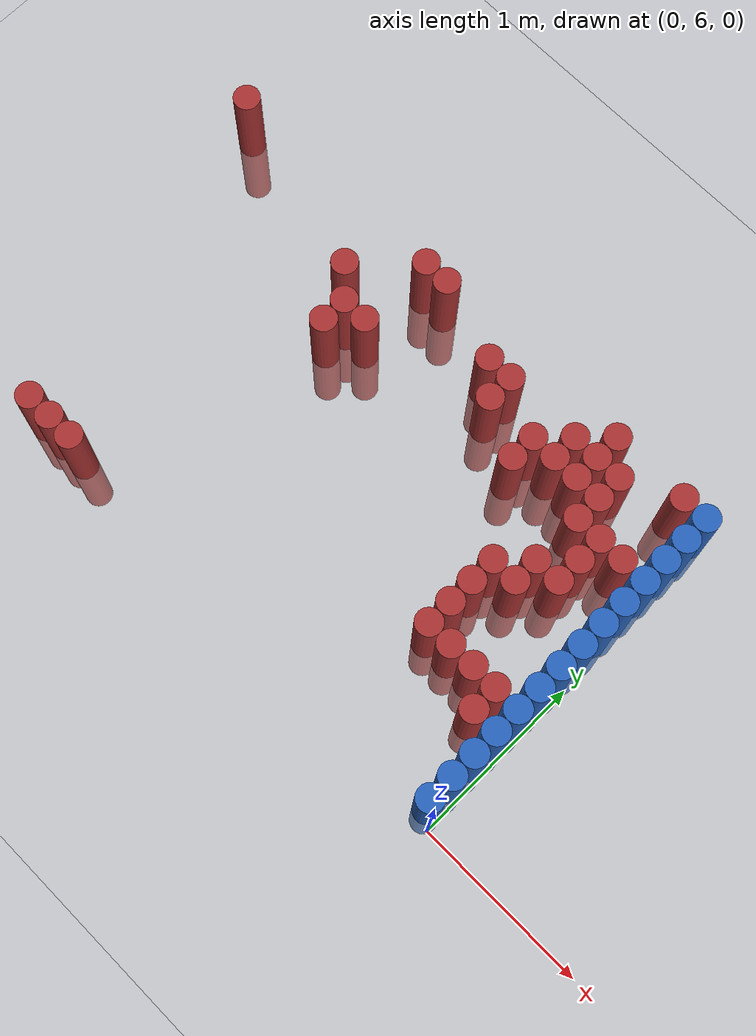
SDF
<sdf version="1.6">
 <world name="default">
  <model name="ground_plane">
   <static>1</static>
   <link name="link">
    <collision name="collision">
     <geometry><plane><normal>0 0 1</normal><size>100 100</size></plane></geometry>
     <surface><friction><ode><mu>100</mu><mu2>50</mu2></ode></friction></surface>
    </collision>
    <visual name="visual">
     <cast_shadows>0</cast_shadows>
     <geometry><plane><normal>0 0 1</normal><size>100 100</size></plane></geometry>
     <material>
      <script><uri>file://media/materials/scripts/gazebo.material</uri><name>Gazebo/Grey</name></script>
     </material>
    </visual>
   </link>
  </model>
  <model name="unit_cylinder_176">
   <static>1</static>
   <pose>-3.375000 8.025000 0.000000 0.000000 0.000000 0.000000</pose>
   <link name="link">
    <inertial>
     <mass>1</mass>
     <inertia><ixx>0.145833</ixx><ixy>0</ixy><ixz>0</ixz><iyy>0.145833</iyy><iyz>0</iyz><izz>0.125</izz></inertia>
    </inertial>
    <collision name="collision">
     <geometry><cylinder><radius>0.075000</radius><length>1</length></cylinder></geometry>
    </collision>
    <visual name="visual">
     <geometry><cylinder><radius>0.075000</radius><length>1</length></cylinder></geometry>
     <material>
      <ambient>0.648000 0.192000 0.192000 1</ambient>
      <diffuse>0.648000 0.192000 0.192000 1</diffuse>
     </material>
     <material>
      <script><name>Gazebo/Grey</name><uri>file://media/materials/scripts/gazebo.material</uri></script>
     </material>
    </visual>
   </link>
  </model>
  <model name="unit_cylinder_196">
   <static>1</static>
   <pose>-2.925000 6.075000 0.000000 0.000000 0.000000 0.000000</pose>
   <link name="link">
    <inertial>
     <mass>1</mass>
     <inertia><ixx>0.145833</ixx><ixy>0</ixy><ixz>0</ixz><iyy>0.145833</iyy><iyz>0</iyz><izz>0.125</izz></inertia>
    </inertial>
    <collision name="collision">
     <geometry><cylinder><radius>0.075000</radius><length>1</length></cylinder></geometry>
    </collision>
    <visual name="visual">
     <geometry><cylinder><radius>0.075000</radius><length>1</length></cylinder></geometry>
     <material>
      <ambient>0.648000 0.192000 0.192000 1</ambient>
      <diffuse>0.648000 0.192000 0.192000 1</diffuse>
     </material>
     <material>
      <script><name>Gazebo/Grey</name><uri>file://media/materials/scripts/gazebo.material</uri></script>
     </material>
    </visual>
   </link>
  </model>
  <model name="unit_cylinder_199">
   <static>1</static>
   <pose>-2.775000 6.075000 0.000000 0.000000 0.000000 0.000000</pose>
   <link name="link">
    <inertial>
     <mass>1</mass>
     <inertia><ixx>0.145833</ixx><ixy>0</ixy><ixz>0</ixz><iyy>0.145833</iyy><iyz>0</iyz><izz>0.125</izz></inertia>
    </inertial>
    <collision name="collision">
     <geometry><cylinder><radius>0.075000</radius><length>1</length></cylinder></geometry>
    </collision>
    <visual name="visual">
     <geometry><cylinder><radius>0.075000</radius><length>1</length></cylinder></geometry>
     <material>
      <ambient>0.648000 0.192000 0.192000 1</ambient>
      <diffuse>0.648000 0.192000 0.192000 1</diffuse>
     </material>
     <material>
      <script><name>Gazebo/Grey</name><uri>file://media/materials/scripts/gazebo.material</uri></script>
     </material>
    </visual>
   </link>
  </model>
  <model name="unit_cylinder_206">
   <static>1</static>
   <pose>-2.625000 6.075000 0.000000 0.000000 0.000000 0.000000</pose>
   <link name="link">
    <inertial>
     <mass>1</mass>
     <inertia><ixx>0.145833</ixx><ixy>0</ixy><ixz>0</ixz><iyy>0.145833</iyy><iyz>0</iyz><izz>0.125</izz></inertia>
    </inertial>
    <collision name="collision">
     <geometry><cylinder><radius>0.075000</radius><length>1</length></cylinder></geometry>
    </collision>
    <visual name="visual">
     <geometry><cylinder><radius>0.075000</radius><length>1</length></cylinder></geometry>
     <material>
      <ambient>0.648000 0.192000 0.192000 1</ambient>
      <diffuse>0.648000 0.192000 0.192000 1</diffuse>
     </material>
     <material>
      <script><name>Gazebo/Grey</name><uri>file://media/materials/scripts/gazebo.material</uri></script>
     </material>
    </visual>
   </link>
  </model>
  <model name="unit_cylinder_210">
   <static>1</static>
   <pose>-2.325000 7.725000 0.000000 0.000000 0.000000 0.000000</pose>
   <link name="link">
    <inertial>
     <mass>1</mass>
     <inertia><ixx>0.145833</ixx><ixy>0</ixy><ixz>0</ixz><iyy>0.145833</iyy><iyz>0</iyz><izz>0.125</izz></inertia>
    </inertial>
    <collision name="collision">
     <geometry><cylinder><radius>0.075000</radius><length>1</length></cylinder></geometry>
    </collision>
    <visual name="visual">
     <geometry><cylinder><radius>0.075000</radius><length>1</length></cylinder></geometry>
     <material>
      <ambient>0.648000 0.192000 0.192000 1</ambient>
      <diffuse>0.648000 0.192000 0.192000 1</diffuse>
     </material>
     <material>
      <script><name>Gazebo/Grey</name><uri>file://media/materials/scripts/gazebo.material</uri></script>
     </material>
    </visual>
   </link>
  </model>
  <model name="unit_cylinder_213">
   <static>1</static>
   <pose>-2.175000 7.425000 0.000000 0.000000 0.000000 0.000000</pose>
   <link name="link">
    <inertial>
     <mass>1</mass>
     <inertia><ixx>0.145833</ixx><ixy>0</ixy><ixz>0</ixz><iyy>0.145833</iyy><iyz>0</iyz><izz>0.125</izz></inertia>
    </inertial>
    <collision name="collision">
     <geometry><cylinder><radius>0.075000</radius><length>1</length></cylinder></geometry>
    </collision>
    <visual name="visual">
     <geometry><cylinder><radius>0.075000</radius><length>1</length></cylinder></geometry>
     <material>
      <ambient>0.648000 0.192000 0.192000 1</ambient>
      <diffuse>0.648000 0.192000 0.192000 1</diffuse>
     </material>
     <material>
      <script><name>Gazebo/Grey</name><uri>file://media/materials/scripts/gazebo.material</uri></script>
     </material>
    </visual>
   </link>
  </model>
  <model name="unit_cylinder_214">
   <static>1</static>
   <pose>-2.175000 7.575000 0.000000 0.000000 0.000000 0.000000</pose>
   <link name="link">
    <inertial>
     <mass>1</mass>
     <inertia><ixx>0.145833</ixx><ixy>0</ixy><ixz>0</ixz><iyy>0.145833</iyy><iyz>0</iyz><izz>0.125</izz></inertia>
    </inertial>
    <collision name="collision">
     <geometry><cylinder><radius>0.075000</radius><length>1</length></cylinder></geometry>
    </collision>
    <visual name="visual">
     <geometry><cylinder><radius>0.075000</radius><length>1</length></cylinder></geometry>
     <material>
      <ambient>0.648000 0.192000 0.192000 1</ambient>
      <diffuse>0.648000 0.192000 0.192000 1</diffuse>
     </material>
     <material>
      <script><name>Gazebo/Grey</name><uri>file://media/materials/scripts/gazebo.material</uri></script>
     </material>
    </visual>
   </link>
  </model>
  <model name="unit_cylinder_218">
   <static>1</static>
   <pose>-2.025000 7.575000 0.000000 0.000000 0.000000 0.000000</pose>
   <link name="link">
    <inertial>
     <mass>1</mass>
     <inertia><ixx>0.145833</ixx><ixy>0</ixy><ixz>0</ixz><iyy>0.145833</iyy><iyz>0</iyz><izz>0.125</izz></inertia>
    </inertial>
    <collision name="collision">
     <geometry><cylinder><radius>0.075000</radius><length>1</length></cylinder></geometry>
    </collision>
    <visual name="visual">
     <geometry><cylinder><radius>0.075000</radius><length>1</length></cylinder></geometry>
     <material>
      <ambient>0.648000 0.192000 0.192000 1</ambient>
      <diffuse>0.648000 0.192000 0.192000 1</diffuse>
     </material>
     <material>
      <script><name>Gazebo/Grey</name><uri>file://media/materials/scripts/gazebo.material</uri></script>
     </material>
    </visual>
   </link>
  </model>
  <model name="unit_cylinder_219">
   <static>1</static>
   <pose>-2.025000 8.025000 0.000000 0.000000 0.000000 0.000000</pose>
   <link name="link">
    <inertial>
     <mass>1</mass>
     <inertia><ixx>0.145833</ixx><ixy>0</ixy><ixz>0</ixz><iyy>0.145833</iyy><iyz>0</iyz><izz>0.125</izz></inertia>
    </inertial>
    <collision name="collision">
     <geometry><cylinder><radius>0.075000</radius><length>1</length></cylinder></geometry>
    </collision>
    <visual name="visual">
     <geometry><cylinder><radius>0.075000</radius><length>1</length></cylinder></geometry>
     <material>
      <ambient>0.648000 0.192000 0.192000 1</ambient>
      <diffuse>0.648000 0.192000 0.192000 1</diffuse>
     </material>
     <material>
      <script><name>Gazebo/Grey</name><uri>file://media/materials/scripts/gazebo.material</uri></script>
     </material>
    </visual>
   </link>
  </model>
  <model name="unit_cylinder_222">
   <static>1</static>
   <pose>-1.875000 8.025000 0.000000 0.000000 0.000000 0.000000</pose>
   <link name="link">
    <inertial>
     <mass>1</mass>
     <inertia><ixx>0.145833</ixx><ixy>0</ixy><ixz>0</ixz><iyy>0.145833</iyy><iyz>0</iyz><izz>0.125</izz></inertia>
    </inertial>
    <collision name="collision">
     <geometry><cylinder><radius>0.075000</radius><length>1</length></cylinder></geometry>
    </collision>
    <visual name="visual">
     <geometry><cylinder><radius>0.075000</radius><length>1</length></cylinder></geometry>
     <material>
      <ambient>0.648000 0.192000 0.192000 1</ambient>
      <diffuse>0.648000 0.192000 0.192000 1</diffuse>
     </material>
     <material>
      <script><name>Gazebo/Grey</name><uri>file://media/materials/scripts/gazebo.material</uri></script>
     </material>
    </visual>
   </link>
  </model>
  <model name="unit_cylinder_232">
   <static>1</static>
   <pose>-1.425000 7.875000 0.000000 0.000000 0.000000 0.000000</pose>
   <link name="link">
    <inertial>
     <mass>1</mass>
     <inertia><ixx>0.145833</ixx><ixy>0</ixy><ixz>0</ixz><iyy>0.145833</iyy><iyz>0</iyz><izz>0.125</izz></inertia>
    </inertial>
    <collision name="collision">
     <geometry><cylinder><radius>0.075000</radius><length>1</length></cylinder></geometry>
    </collision>
    <visual name="visual">
     <geometry><cylinder><radius>0.075000</radius><length>1</length></cylinder></geometry>
     <material>
      <ambient>0.648000 0.192000 0.192000 1</ambient>
      <diffuse>0.648000 0.192000 0.192000 1</diffuse>
     </material>
     <material>
      <script><name>Gazebo/Grey</name><uri>file://media/materials/scripts/gazebo.material</uri></script>
     </material>
    </visual>
   </link>
  </model>
  <model name="unit_cylinder_235">
   <static>1</static>
   <pose>-1.275000 7.725000 0.000000 0.000000 0.000000 0.000000</pose>
   <link name="link">
    <inertial>
     <mass>1</mass>
     <inertia><ixx>0.145833</ixx><ixy>0</ixy><ixz>0</ixz><iyy>0.145833</iyy><iyz>0</iyz><izz>0.125</izz></inertia>
    </inertial>
    <collision name="collision">
     <geometry><cylinder><radius>0.075000</radius><length>1</length></cylinder></geometry>
    </collision>
    <visual name="visual">
     <geometry><cylinder><radius>0.075000</radius><length>1</length></cylinder></geometry>
     <material>
      <ambient>0.648000 0.192000 0.192000 1</ambient>
      <diffuse>0.648000 0.192000 0.192000 1</diffuse>
     </material>
     <material>
      <script><name>Gazebo/Grey</name><uri>file://media/materials/scripts/gazebo.material</uri></script>
     </material>
    </visual>
   </link>
  </model>
  <model name="unit_cylinder_236">
   <static>1</static>
   <pose>-1.275000 7.875000 0.000000 0.000000 0.000000 0.000000</pose>
   <link name="link">
    <inertial>
     <mass>1</mass>
     <inertia><ixx>0.145833</ixx><ixy>0</ixy><ixz>0</ixz><iyy>0.145833</iyy><iyz>0</iyz><izz>0.125</izz></inertia>
    </inertial>
    <collision name="collision">
     <geometry><cylinder><radius>0.075000</radius><length>1</length></cylinder></geometry>
    </collision>
    <visual name="visual">
     <geometry><cylinder><radius>0.075000</radius><length>1</length></cylinder></geometry>
     <material>
      <ambient>0.648000 0.192000 0.192000 1</ambient>
      <diffuse>0.648000 0.192000 0.192000 1</diffuse>
     </material>
     <material>
      <script><name>Gazebo/Grey</name><uri>file://media/materials/scripts/gazebo.material</uri></script>
     </material>
    </visual>
   </link>
  </model>
  <model name="unit_cylinder_239">
   <static>1</static>
   <pose>-0.975000 7.575000 0.000000 0.000000 0.000000 0.000000</pose>
   <link name="link">
    <inertial>
     <mass>1</mass>
     <inertia><ixx>0.145833</ixx><ixy>0</ixy><ixz>0</ixz><iyy>0.145833</iyy><iyz>0</iyz><izz>0.125</izz></inertia>
    </inertial>
    <collision name="collision">
     <geometry><cylinder><radius>0.075000</radius><length>1</length></cylinder></geometry>
    </collision>
    <visual name="visual">
     <geometry><cylinder><radius>0.075000</radius><length>1</length></cylinder></geometry>
     <material>
      <ambient>0.648000 0.192000 0.192000 1</ambient>
      <diffuse>0.648000 0.192000 0.192000 1</diffuse>
     </material>
     <material>
      <script><name>Gazebo/Grey</name><uri>file://media/materials/scripts/gazebo.material</uri></script>
     </material>
    </visual>
   </link>
  </model>
  <model name="unit_cylinder_240">
   <static>1</static>
   <pose>-0.975000 7.725000 0.000000 0.000000 0.000000 0.000000</pose>
   <link name="link">
    <inertial>
     <mass>1</mass>
     <inertia><ixx>0.145833</ixx><ixy>0</ixy><ixz>0</ixz><iyy>0.145833</iyy><iyz>0</iyz><izz>0.125</izz></inertia>
    </inertial>
    <collision name="collision">
     <geometry><cylinder><radius>0.075000</radius><length>1</length></cylinder></geometry>
    </collision>
    <visual name="visual">
     <geometry><cylinder><radius>0.075000</radius><length>1</length></cylinder></geometry>
     <material>
      <ambient>0.648000 0.192000 0.192000 1</ambient>
      <diffuse>0.648000 0.192000 0.192000 1</diffuse>
     </material>
     <material>
      <script><name>Gazebo/Grey</name><uri>file://media/materials/scripts/gazebo.material</uri></script>
     </material>
    </visual>
   </link>
  </model>
  <model name="unit_cylinder_245">
   <static>1</static>
   <pose>-0.825000 7.725000 0.000000 0.000000 0.000000 0.000000</pose>
   <link name="link">
    <inertial>
     <mass>1</mass>
     <inertia><ixx>0.145833</ixx><ixy>0</ixy><ixz>0</ixz><iyy>0.145833</iyy><iyz>0</iyz><izz>0.125</izz></inertia>
    </inertial>
    <collision name="collision">
     <geometry><cylinder><radius>0.075000</radius><length>1</length></cylinder></geometry>
    </collision>
    <visual name="visual">
     <geometry><cylinder><radius>0.075000</radius><length>1</length></cylinder></geometry>
     <material>
      <ambient>0.648000 0.192000 0.192000 1</ambient>
      <diffuse>0.648000 0.192000 0.192000 1</diffuse>
     </material>
     <material>
      <script><name>Gazebo/Grey</name><uri>file://media/materials/scripts/gazebo.material</uri></script>
     </material>
    </visual>
   </link>
  </model>
  <model name="unit_cylinder_246">
   <static>1</static>
   <pose>-0.825000 7.875000 0.000000 0.000000 0.000000 0.000000</pose>
   <link name="link">
    <inertial>
     <mass>1</mass>
     <inertia><ixx>0.145833</ixx><ixy>0</ixy><ixz>0</ixz><iyy>0.145833</iyy><iyz>0</iyz><izz>0.125</izz></inertia>
    </inertial>
    <collision name="collision">
     <geometry><cylinder><radius>0.075000</radius><length>1</length></cylinder></geometry>
    </collision>
    <visual name="visual">
     <geometry><cylinder><radius>0.075000</radius><length>1</length></cylinder></geometry>
     <material>
      <ambient>0.648000 0.192000 0.192000 1</ambient>
      <diffuse>0.648000 0.192000 0.192000 1</diffuse>
     </material>
     <material>
      <script><name>Gazebo/Grey</name><uri>file://media/materials/scripts/gazebo.material</uri></script>
     </material>
    </visual>
   </link>
  </model>
  <model name="unit_cylinder_250">
   <static>1</static>
   <pose>-0.675000 6.675000 0.000000 0.000000 0.000000 0.000000</pose>
   <link name="link">
    <inertial>
     <mass>1</mass>
     <inertia><ixx>0.145833</ixx><ixy>0</ixy><ixz>0</ixz><iyy>0.145833</iyy><iyz>0</iyz><izz>0.125</izz></inertia>
    </inertial>
    <collision name="collision">
     <geometry><cylinder><radius>0.075000</radius><length>1</length></cylinder></geometry>
    </collision>
    <visual name="visual">
     <geometry><cylinder><radius>0.075000</radius><length>1</length></cylinder></geometry>
     <material>
      <ambient>0.648000 0.192000 0.192000 1</ambient>
      <diffuse>0.648000 0.192000 0.192000 1</diffuse>
     </material>
     <material>
      <script><name>Gazebo/Grey</name><uri>file://media/materials/scripts/gazebo.material</uri></script>
     </material>
    </visual>
   </link>
  </model>
  <model name="unit_cylinder_251">
   <static>1</static>
   <pose>-0.675000 6.825000 0.000000 0.000000 0.000000 0.000000</pose>
   <link name="link">
    <inertial>
     <mass>1</mass>
     <inertia><ixx>0.145833</ixx><ixy>0</ixy><ixz>0</ixz><iyy>0.145833</iyy><iyz>0</iyz><izz>0.125</izz></inertia>
    </inertial>
    <collision name="collision">
     <geometry><cylinder><radius>0.075000</radius><length>1</length></cylinder></geometry>
    </collision>
    <visual name="visual">
     <geometry><cylinder><radius>0.075000</radius><length>1</length></cylinder></geometry>
     <material>
      <ambient>0.648000 0.192000 0.192000 1</ambient>
      <diffuse>0.648000 0.192000 0.192000 1</diffuse>
     </material>
     <material>
      <script><name>Gazebo/Grey</name><uri>file://media/materials/scripts/gazebo.material</uri></script>
     </material>
    </visual>
   </link>
  </model>
  <model name="unit_cylinder_252">
   <static>1</static>
   <pose>-0.675000 6.975000 0.000000 0.000000 0.000000 0.000000</pose>
   <link name="link">
    <inertial>
     <mass>1</mass>
     <inertia><ixx>0.145833</ixx><ixy>0</ixy><ixz>0</ixz><iyy>0.145833</iyy><iyz>0</iyz><izz>0.125</izz></inertia>
    </inertial>
    <collision name="collision">
     <geometry><cylinder><radius>0.075000</radius><length>1</length></cylinder></geometry>
    </collision>
    <visual name="visual">
     <geometry><cylinder><radius>0.075000</radius><length>1</length></cylinder></geometry>
     <material>
      <ambient>0.648000 0.192000 0.192000 1</ambient>
      <diffuse>0.648000 0.192000 0.192000 1</diffuse>
     </material>
     <material>
      <script><name>Gazebo/Grey</name><uri>file://media/materials/scripts/gazebo.material</uri></script>
     </material>
    </visual>
   </link>
  </model>
  <model name="unit_cylinder_253">
   <static>1</static>
   <pose>-0.675000 7.125000 0.000000 0.000000 0.000000 0.000000</pose>
   <link name="link">
    <inertial>
     <mass>1</mass>
     <inertia><ixx>0.145833</ixx><ixy>0</ixy><ixz>0</ixz><iyy>0.145833</iyy><iyz>0</iyz><izz>0.125</izz></inertia>
    </inertial>
    <collision name="collision">
     <geometry><cylinder><radius>0.075000</radius><length>1</length></cylinder></geometry>
    </collision>
    <visual name="visual">
     <geometry><cylinder><radius>0.075000</radius><length>1</length></cylinder></geometry>
     <material>
      <ambient>0.648000 0.192000 0.192000 1</ambient>
      <diffuse>0.648000 0.192000 0.192000 1</diffuse>
     </material>
     <material>
      <script><name>Gazebo/Grey</name><uri>file://media/materials/scripts/gazebo.material</uri></script>
     </material>
    </visual>
   </link>
  </model>
  <model name="unit_cylinder_254">
   <static>1</static>
   <pose>-0.675000 7.725000 0.000000 0.000000 0.000000 0.000000</pose>
   <link name="link">
    <inertial>
     <mass>1</mass>
     <inertia><ixx>0.145833</ixx><ixy>0</ixy><ixz>0</ixz><iyy>0.145833</iyy><iyz>0</iyz><izz>0.125</izz></inertia>
    </inertial>
    <collision name="collision">
     <geometry><cylinder><radius>0.075000</radius><length>1</length></cylinder></geometry>
    </collision>
    <visual name="visual">
     <geometry><cylinder><radius>0.075000</radius><length>1</length></cylinder></geometry>
     <material>
      <ambient>0.648000 0.192000 0.192000 1</ambient>
      <diffuse>0.648000 0.192000 0.192000 1</diffuse>
     </material>
     <material>
      <script><name>Gazebo/Grey</name><uri>file://media/materials/scripts/gazebo.material</uri></script>
     </material>
    </visual>
   </link>
  </model>
  <model name="unit_cylinder_255">
   <static>1</static>
   <pose>-0.675000 7.875000 0.000000 0.000000 0.000000 0.000000</pose>
   <link name="link">
    <inertial>
     <mass>1</mass>
     <inertia><ixx>0.145833</ixx><ixy>0</ixy><ixz>0</ixz><iyy>0.145833</iyy><iyz>0</iyz><izz>0.125</izz></inertia>
    </inertial>
    <collision name="collision">
     <geometry><cylinder><radius>0.075000</radius><length>1</length></cylinder></geometry>
    </collision>
    <visual name="visual">
     <geometry><cylinder><radius>0.075000</radius><length>1</length></cylinder></geometry>
     <material>
      <ambient>0.648000 0.192000 0.192000 1</ambient>
      <diffuse>0.648000 0.192000 0.192000 1</diffuse>
     </material>
     <material>
      <script><name>Gazebo/Grey</name><uri>file://media/materials/scripts/gazebo.material</uri></script>
     </material>
    </visual>
   </link>
  </model>
  <model name="unit_cylinder_256">
   <static>1</static>
   <pose>-0.675000 8.025000 0.000000 0.000000 0.000000 0.000000</pose>
   <link name="link">
    <inertial>
     <mass>1</mass>
     <inertia><ixx>0.145833</ixx><ixy>0</ixy><ixz>0</ixz><iyy>0.145833</iyy><iyz>0</iyz><izz>0.125</izz></inertia>
    </inertial>
    <collision name="collision">
     <geometry><cylinder><radius>0.075000</radius><length>1</length></cylinder></geometry>
    </collision>
    <visual name="visual">
     <geometry><cylinder><radius>0.075000</radius><length>1</length></cylinder></geometry>
     <material>
      <ambient>0.648000 0.192000 0.192000 1</ambient>
      <diffuse>0.648000 0.192000 0.192000 1</diffuse>
     </material>
     <material>
      <script><name>Gazebo/Grey</name><uri>file://media/materials/scripts/gazebo.material</uri></script>
     </material>
    </visual>
   </link>
  </model>
  <model name="unit_cylinder_261">
   <static>1</static>
   <pose>-0.525000 6.675000 0.000000 0.000000 0.000000 0.000000</pose>
   <link name="link">
    <inertial>
     <mass>1</mass>
     <inertia><ixx>0.145833</ixx><ixy>0</ixy><ixz>0</ixz><iyy>0.145833</iyy><iyz>0</iyz><izz>0.125</izz></inertia>
    </inertial>
    <collision name="collision">
     <geometry><cylinder><radius>0.075000</radius><length>1</length></cylinder></geometry>
    </collision>
    <visual name="visual">
     <geometry><cylinder><radius>0.075000</radius><length>1</length></cylinder></geometry>
     <material>
      <ambient>0.648000 0.192000 0.192000 1</ambient>
      <diffuse>0.648000 0.192000 0.192000 1</diffuse>
     </material>
     <material>
      <script><name>Gazebo/Grey</name><uri>file://media/materials/scripts/gazebo.material</uri></script>
     </material>
    </visual>
   </link>
  </model>
  <model name="unit_cylinder_262">
   <static>1</static>
   <pose>-0.525000 7.125000 0.000000 0.000000 0.000000 0.000000</pose>
   <link name="link">
    <inertial>
     <mass>1</mass>
     <inertia><ixx>0.145833</ixx><ixy>0</ixy><ixz>0</ixz><iyy>0.145833</iyy><iyz>0</iyz><izz>0.125</izz></inertia>
    </inertial>
    <collision name="collision">
     <geometry><cylinder><radius>0.075000</radius><length>1</length></cylinder></geometry>
    </collision>
    <visual name="visual">
     <geometry><cylinder><radius>0.075000</radius><length>1</length></cylinder></geometry>
     <material>
      <ambient>0.648000 0.192000 0.192000 1</ambient>
      <diffuse>0.648000 0.192000 0.192000 1</diffuse>
     </material>
     <material>
      <script><name>Gazebo/Grey</name><uri>file://media/materials/scripts/gazebo.material</uri></script>
     </material>
    </visual>
   </link>
  </model>
  <model name="unit_cylinder_263">
   <static>1</static>
   <pose>-0.525000 7.275000 0.000000 0.000000 0.000000 0.000000</pose>
   <link name="link">
    <inertial>
     <mass>1</mass>
     <inertia><ixx>0.145833</ixx><ixy>0</ixy><ixz>0</ixz><iyy>0.145833</iyy><iyz>0</iyz><izz>0.125</izz></inertia>
    </inertial>
    <collision name="collision">
     <geometry><cylinder><radius>0.075000</radius><length>1</length></cylinder></geometry>
    </collision>
    <visual name="visual">
     <geometry><cylinder><radius>0.075000</radius><length>1</length></cylinder></geometry>
     <material>
      <ambient>0.648000 0.192000 0.192000 1</ambient>
      <diffuse>0.648000 0.192000 0.192000 1</diffuse>
     </material>
     <material>
      <script><name>Gazebo/Grey</name><uri>file://media/materials/scripts/gazebo.material</uri></script>
     </material>
    </visual>
   </link>
  </model>
  <model name="unit_cylinder_264">
   <static>1</static>
   <pose>-0.525000 7.575000 0.000000 0.000000 0.000000 0.000000</pose>
   <link name="link">
    <inertial>
     <mass>1</mass>
     <inertia><ixx>0.145833</ixx><ixy>0</ixy><ixz>0</ixz><iyy>0.145833</iyy><iyz>0</iyz><izz>0.125</izz></inertia>
    </inertial>
    <collision name="collision">
     <geometry><cylinder><radius>0.075000</radius><length>1</length></cylinder></geometry>
    </collision>
    <visual name="visual">
     <geometry><cylinder><radius>0.075000</radius><length>1</length></cylinder></geometry>
     <material>
      <ambient>0.648000 0.192000 0.192000 1</ambient>
      <diffuse>0.648000 0.192000 0.192000 1</diffuse>
     </material>
     <material>
      <script><name>Gazebo/Grey</name><uri>file://media/materials/scripts/gazebo.material</uri></script>
     </material>
    </visual>
   </link>
  </model>
  <model name="unit_cylinder_265">
   <static>1</static>
   <pose>-0.525000 7.725000 0.000000 0.000000 0.000000 0.000000</pose>
   <link name="link">
    <inertial>
     <mass>1</mass>
     <inertia><ixx>0.145833</ixx><ixy>0</ixy><ixz>0</ixz><iyy>0.145833</iyy><iyz>0</iyz><izz>0.125</izz></inertia>
    </inertial>
    <collision name="collision">
     <geometry><cylinder><radius>0.075000</radius><length>1</length></cylinder></geometry>
    </collision>
    <visual name="visual">
     <geometry><cylinder><radius>0.075000</radius><length>1</length></cylinder></geometry>
     <material>
      <ambient>0.648000 0.192000 0.192000 1</ambient>
      <diffuse>0.648000 0.192000 0.192000 1</diffuse>
     </material>
     <material>
      <script><name>Gazebo/Grey</name><uri>file://media/materials/scripts/gazebo.material</uri></script>
     </material>
    </visual>
   </link>
  </model>
  <model name="unit_cylinder_266">
   <static>1</static>
   <pose>-0.525000 7.875000 0.000000 0.000000 0.000000 0.000000</pose>
   <link name="link">
    <inertial>
     <mass>1</mass>
     <inertia><ixx>0.145833</ixx><ixy>0</ixy><ixz>0</ixz><iyy>0.145833</iyy><iyz>0</iyz><izz>0.125</izz></inertia>
    </inertial>
    <collision name="collision">
     <geometry><cylinder><radius>0.075000</radius><length>1</length></cylinder></geometry>
    </collision>
    <visual name="visual">
     <geometry><cylinder><radius>0.075000</radius><length>1</length></cylinder></geometry>
     <material>
      <ambient>0.648000 0.192000 0.192000 1</ambient>
      <diffuse>0.648000 0.192000 0.192000 1</diffuse>
     </material>
     <material>
      <script><name>Gazebo/Grey</name><uri>file://media/materials/scripts/gazebo.material</uri></script>
     </material>
    </visual>
   </link>
  </model>
  <model name="unit_cylinder_267">
   <static>1</static>
   <pose>-0.375000 6.675000 0.000000 0.000000 0.000000 0.000000</pose>
   <link name="link">
    <inertial>
     <mass>1</mass>
     <inertia><ixx>0.145833</ixx><ixy>0</ixy><ixz>0</ixz><iyy>0.145833</iyy><iyz>0</iyz><izz>0.125</izz></inertia>
    </inertial>
    <collision name="collision">
     <geometry><cylinder><radius>0.075000</radius><length>1</length></cylinder></geometry>
    </collision>
    <visual name="visual">
     <geometry><cylinder><radius>0.075000</radius><length>1</length></cylinder></geometry>
     <material>
      <ambient>0.648000 0.192000 0.192000 1</ambient>
      <diffuse>0.648000 0.192000 0.192000 1</diffuse>
     </material>
     <material>
      <script><name>Gazebo/Grey</name><uri>file://media/materials/scripts/gazebo.material</uri></script>
     </material>
    </visual>
   </link>
  </model>
  <model name="unit_cylinder_268">
   <static>1</static>
   <pose>-0.375000 7.275000 0.000000 0.000000 0.000000 0.000000</pose>
   <link name="link">
    <inertial>
     <mass>1</mass>
     <inertia><ixx>0.145833</ixx><ixy>0</ixy><ixz>0</ixz><iyy>0.145833</iyy><iyz>0</iyz><izz>0.125</izz></inertia>
    </inertial>
    <collision name="collision">
     <geometry><cylinder><radius>0.075000</radius><length>1</length></cylinder></geometry>
    </collision>
    <visual name="visual">
     <geometry><cylinder><radius>0.075000</radius><length>1</length></cylinder></geometry>
     <material>
      <ambient>0.648000 0.192000 0.192000 1</ambient>
      <diffuse>0.648000 0.192000 0.192000 1</diffuse>
     </material>
     <material>
      <script><name>Gazebo/Grey</name><uri>file://media/materials/scripts/gazebo.material</uri></script>
     </material>
    </visual>
   </link>
  </model>
  <model name="unit_cylinder_269">
   <static>1</static>
   <pose>-0.375000 7.425000 0.000000 0.000000 0.000000 0.000000</pose>
   <link name="link">
    <inertial>
     <mass>1</mass>
     <inertia><ixx>0.145833</ixx><ixy>0</ixy><ixz>0</ixz><iyy>0.145833</iyy><iyz>0</iyz><izz>0.125</izz></inertia>
    </inertial>
    <collision name="collision">
     <geometry><cylinder><radius>0.075000</radius><length>1</length></cylinder></geometry>
    </collision>
    <visual name="visual">
     <geometry><cylinder><radius>0.075000</radius><length>1</length></cylinder></geometry>
     <material>
      <ambient>0.648000 0.192000 0.192000 1</ambient>
      <diffuse>0.648000 0.192000 0.192000 1</diffuse>
     </material>
     <material>
      <script><name>Gazebo/Grey</name><uri>file://media/materials/scripts/gazebo.material</uri></script>
     </material>
    </visual>
   </link>
  </model>
  <model name="unit_cylinder_270">
   <static>1</static>
   <pose>-0.375000 7.575000 0.000000 0.000000 0.000000 0.000000</pose>
   <link name="link">
    <inertial>
     <mass>1</mass>
     <inertia><ixx>0.145833</ixx><ixy>0</ixy><ixz>0</ixz><iyy>0.145833</iyy><iyz>0</iyz><izz>0.125</izz></inertia>
    </inertial>
    <collision name="collision">
     <geometry><cylinder><radius>0.075000</radius><length>1</length></cylinder></geometry>
    </collision>
    <visual name="visual">
     <geometry><cylinder><radius>0.075000</radius><length>1</length></cylinder></geometry>
     <material>
      <ambient>0.648000 0.192000 0.192000 1</ambient>
      <diffuse>0.648000 0.192000 0.192000 1</diffuse>
     </material>
     <material>
      <script><name>Gazebo/Grey</name><uri>file://media/materials/scripts/gazebo.material</uri></script>
     </material>
    </visual>
   </link>
  </model>
  <model name="unit_cylinder_276">
   <static>1</static>
   <pose>-0.225000 6.525000 0.000000 0.000000 0.000000 0.000000</pose>
   <link name="link">
    <inertial>
     <mass>1</mass>
     <inertia><ixx>0.145833</ixx><ixy>0</ixy><ixz>0</ixz><iyy>0.145833</iyy><iyz>0</iyz><izz>0.125</izz></inertia>
    </inertial>
    <collision name="collision">
     <geometry><cylinder><radius>0.075000</radius><length>1</length></cylinder></geometry>
    </collision>
    <visual name="visual">
     <geometry><cylinder><radius>0.075000</radius><length>1</length></cylinder></geometry>
     <material>
      <ambient>0.648000 0.192000 0.192000 1</ambient>
      <diffuse>0.648000 0.192000 0.192000 1</diffuse>
     </material>
     <material>
      <script><name>Gazebo/Grey</name><uri>file://media/materials/scripts/gazebo.material</uri></script>
     </material>
    </visual>
   </link>
  </model>
  <model name="unit_cylinder_277">
   <static>1</static>
   <pose>-0.225000 6.675000 0.000000 0.000000 0.000000 0.000000</pose>
   <link name="link">
    <inertial>
     <mass>1</mass>
     <inertia><ixx>0.145833</ixx><ixy>0</ixy><ixz>0</ixz><iyy>0.145833</iyy><iyz>0</iyz><izz>0.125</izz></inertia>
    </inertial>
    <collision name="collision">
     <geometry><cylinder><radius>0.075000</radius><length>1</length></cylinder></geometry>
    </collision>
    <visual name="visual">
     <geometry><cylinder><radius>0.075000</radius><length>1</length></cylinder></geometry>
     <material>
      <ambient>0.648000 0.192000 0.192000 1</ambient>
      <diffuse>0.648000 0.192000 0.192000 1</diffuse>
     </material>
     <material>
      <script><name>Gazebo/Grey</name><uri>file://media/materials/scripts/gazebo.material</uri></script>
     </material>
    </visual>
   </link>
  </model>
  <model name="unit_cylinder_278">
   <static>1</static>
   <pose>-0.225000 7.575000 0.000000 0.000000 0.000000 0.000000</pose>
   <link name="link">
    <inertial>
     <mass>1</mass>
     <inertia><ixx>0.145833</ixx><ixy>0</ixy><ixz>0</ixz><iyy>0.145833</iyy><iyz>0</iyz><izz>0.125</izz></inertia>
    </inertial>
    <collision name="collision">
     <geometry><cylinder><radius>0.075000</radius><length>1</length></cylinder></geometry>
    </collision>
    <visual name="visual">
     <geometry><cylinder><radius>0.075000</radius><length>1</length></cylinder></geometry>
     <material>
      <ambient>0.648000 0.192000 0.192000 1</ambient>
      <diffuse>0.648000 0.192000 0.192000 1</diffuse>
     </material>
     <material>
      <script><name>Gazebo/Grey</name><uri>file://media/materials/scripts/gazebo.material</uri></script>
     </material>
    </visual>
   </link>
  </model>
  <model name="unit_cylinder_279">
   <static>1</static>
   <pose>-0.225000 8.025000 0.000000 0.000000 0.000000 0.000000</pose>
   <link name="link">
    <inertial>
     <mass>1</mass>
     <inertia><ixx>0.145833</ixx><ixy>0</ixy><ixz>0</ixz><iyy>0.145833</iyy><iyz>0</iyz><izz>0.125</izz></inertia>
    </inertial>
    <collision name="collision">
     <geometry><cylinder><radius>0.075000</radius><length>1</length></cylinder></geometry>
    </collision>
    <visual name="visual">
     <geometry><cylinder><radius>0.075000</radius><length>1</length></cylinder></geometry>
     <material>
      <ambient>0.648000 0.192000 0.192000 1</ambient>
      <diffuse>0.648000 0.192000 0.192000 1</diffuse>
     </material>
     <material>
      <script><name>Gazebo/Grey</name><uri>file://media/materials/scripts/gazebo.material</uri></script>
     </material>
    </visual>
   </link>
  </model>
  <model name="unit_cylinder_290">
   <static>1</static>
   <pose>-0.075000 6.075000 0.000000 0.000000 0.000000 0.000000</pose>
   <link name="link">
    <inertial>
     <mass>1</mass>
     <inertia><ixx>0.145833</ixx><ixy>0</ixy><ixz>0</ixz><iyy>0.145833</iyy><iyz>0</iyz><izz>0.125</izz></inertia>
    </inertial>
    <collision name="collision">
     <geometry><cylinder><radius>0.075000</radius><length>1</length></cylinder></geometry>
    </collision>
    <visual name="visual">
     <geometry><cylinder><radius>0.075000</radius><length>1</length></cylinder></geometry>
     <material>
      <ambient>0.152000 0.379000 0.720000 1</ambient>
      <diffuse>0.152000 0.379000 0.720000 1</diffuse>
     </material>
     <material>
      <script><name>Gazebo/Grey</name><uri>file://media/materials/scripts/gazebo.material</uri></script>
     </material>
    </visual>
   </link>
  </model>
  <model name="unit_cylinder_291">
   <static>1</static>
   <pose>-0.075000 6.225000 0.000000 0.000000 0.000000 0.000000</pose>
   <link name="link">
    <inertial>
     <mass>1</mass>
     <inertia><ixx>0.145833</ixx><ixy>0</ixy><ixz>0</ixz><iyy>0.145833</iyy><iyz>0</iyz><izz>0.125</izz></inertia>
    </inertial>
    <collision name="collision">
     <geometry><cylinder><radius>0.075000</radius><length>1</length></cylinder></geometry>
    </collision>
    <visual name="visual">
     <geometry><cylinder><radius>0.075000</radius><length>1</length></cylinder></geometry>
     <material>
      <ambient>0.152000 0.379000 0.720000 1</ambient>
      <diffuse>0.152000 0.379000 0.720000 1</diffuse>
     </material>
     <material>
      <script><name>Gazebo/Grey</name><uri>file://media/materials/scripts/gazebo.material</uri></script>
     </material>
    </visual>
   </link>
  </model>
  <model name="unit_cylinder_292">
   <static>1</static>
   <pose>-0.075000 6.375000 0.000000 0.000000 0.000000 0.000000</pose>
   <link name="link">
    <inertial>
     <mass>1</mass>
     <inertia><ixx>0.145833</ixx><ixy>0</ixy><ixz>0</ixz><iyy>0.145833</iyy><iyz>0</iyz><izz>0.125</izz></inertia>
    </inertial>
    <collision name="collision">
     <geometry><cylinder><radius>0.075000</radius><length>1</length></cylinder></geometry>
    </collision>
    <visual name="visual">
     <geometry><cylinder><radius>0.075000</radius><length>1</length></cylinder></geometry>
     <material>
      <ambient>0.152000 0.379000 0.720000 1</ambient>
      <diffuse>0.152000 0.379000 0.720000 1</diffuse>
     </material>
     <material>
      <script><name>Gazebo/Grey</name><uri>file://media/materials/scripts/gazebo.material</uri></script>
     </material>
    </visual>
   </link>
  </model>
  <model name="unit_cylinder_293">
   <static>1</static>
   <pose>-0.075000 6.525000 0.000000 0.000000 0.000000 0.000000</pose>
   <link name="link">
    <inertial>
     <mass>1</mass>
     <inertia><ixx>0.145833</ixx><ixy>0</ixy><ixz>0</ixz><iyy>0.145833</iyy><iyz>0</iyz><izz>0.125</izz></inertia>
    </inertial>
    <collision name="collision">
     <geometry><cylinder><radius>0.075000</radius><length>1</length></cylinder></geometry>
    </collision>
    <visual name="visual">
     <geometry><cylinder><radius>0.075000</radius><length>1</length></cylinder></geometry>
     <material>
      <ambient>0.152000 0.379000 0.720000 1</ambient>
      <diffuse>0.152000 0.379000 0.720000 1</diffuse>
     </material>
     <material>
      <script><name>Gazebo/Grey</name><uri>file://media/materials/scripts/gazebo.material</uri></script>
     </material>
    </visual>
   </link>
  </model>
  <model name="unit_cylinder_294">
   <static>1</static>
   <pose>-0.075000 6.675000 0.000000 0.000000 0.000000 0.000000</pose>
   <link name="link">
    <inertial>
     <mass>1</mass>
     <inertia><ixx>0.145833</ixx><ixy>0</ixy><ixz>0</ixz><iyy>0.145833</iyy><iyz>0</iyz><izz>0.125</izz></inertia>
    </inertial>
    <collision name="collision">
     <geometry><cylinder><radius>0.075000</radius><length>1</length></cylinder></geometry>
    </collision>
    <visual name="visual">
     <geometry><cylinder><radius>0.075000</radius><length>1</length></cylinder></geometry>
     <material>
      <ambient>0.152000 0.379000 0.720000 1</ambient>
      <diffuse>0.152000 0.379000 0.720000 1</diffuse>
     </material>
     <material>
      <script><name>Gazebo/Grey</name><uri>file://media/materials/scripts/gazebo.material</uri></script>
     </material>
    </visual>
   </link>
  </model>
  <model name="unit_cylinder_295">
   <static>1</static>
   <pose>-0.075000 6.825000 0.000000 0.000000 0.000000 0.000000</pose>
   <link name="link">
    <inertial>
     <mass>1</mass>
     <inertia><ixx>0.145833</ixx><ixy>0</ixy><ixz>0</ixz><iyy>0.145833</iyy><iyz>0</iyz><izz>0.125</izz></inertia>
    </inertial>
    <collision name="collision">
     <geometry><cylinder><radius>0.075000</radius><length>1</length></cylinder></geometry>
    </collision>
    <visual name="visual">
     <geometry><cylinder><radius>0.075000</radius><length>1</length></cylinder></geometry>
     <material>
      <ambient>0.152000 0.379000 0.720000 1</ambient>
      <diffuse>0.152000 0.379000 0.720000 1</diffuse>
     </material>
     <material>
      <script><name>Gazebo/Grey</name><uri>file://media/materials/scripts/gazebo.material</uri></script>
     </material>
    </visual>
   </link>
  </model>
  <model name="unit_cylinder_296">
   <static>1</static>
   <pose>-0.075000 6.975000 0.000000 0.000000 0.000000 0.000000</pose>
   <link name="link">
    <inertial>
     <mass>1</mass>
     <inertia><ixx>0.145833</ixx><ixy>0</ixy><ixz>0</ixz><iyy>0.145833</iyy><iyz>0</iyz><izz>0.125</izz></inertia>
    </inertial>
    <collision name="collision">
     <geometry><cylinder><radius>0.075000</radius><length>1</length></cylinder></geometry>
    </collision>
    <visual name="visual">
     <geometry><cylinder><radius>0.075000</radius><length>1</length></cylinder></geometry>
     <material>
      <ambient>0.152000 0.379000 0.720000 1</ambient>
      <diffuse>0.152000 0.379000 0.720000 1</diffuse>
     </material>
     <material>
      <script><name>Gazebo/Grey</name><uri>file://media/materials/scripts/gazebo.material</uri></script>
     </material>
    </visual>
   </link>
  </model>
  <model name="unit_cylinder_297">
   <static>1</static>
   <pose>-0.075000 7.125000 0.000000 0.000000 0.000000 0.000000</pose>
   <link name="link">
    <inertial>
     <mass>1</mass>
     <inertia><ixx>0.145833</ixx><ixy>0</ixy><ixz>0</ixz><iyy>0.145833</iyy><iyz>0</iyz><izz>0.125</izz></inertia>
    </inertial>
    <collision name="collision">
     <geometry><cylinder><radius>0.075000</radius><length>1</length></cylinder></geometry>
    </collision>
    <visual name="visual">
     <geometry><cylinder><radius>0.075000</radius><length>1</length></cylinder></geometry>
     <material>
      <ambient>0.152000 0.379000 0.720000 1</ambient>
      <diffuse>0.152000 0.379000 0.720000 1</diffuse>
     </material>
     <material>
      <script><name>Gazebo/Grey</name><uri>file://media/materials/scripts/gazebo.material</uri></script>
     </material>
    </visual>
   </link>
  </model>
  <model name="unit_cylinder_298">
   <static>1</static>
   <pose>-0.075000 7.275000 0.000000 0.000000 0.000000 0.000000</pose>
   <link name="link">
    <inertial>
     <mass>1</mass>
     <inertia><ixx>0.145833</ixx><ixy>0</ixy><ixz>0</ixz><iyy>0.145833</iyy><iyz>0</iyz><izz>0.125</izz></inertia>
    </inertial>
    <collision name="collision">
     <geometry><cylinder><radius>0.075000</radius><length>1</length></cylinder></geometry>
    </collision>
    <visual name="visual">
     <geometry><cylinder><radius>0.075000</radius><length>1</length></cylinder></geometry>
     <material>
      <ambient>0.152000 0.379000 0.720000 1</ambient>
      <diffuse>0.152000 0.379000 0.720000 1</diffuse>
     </material>
     <material>
      <script><name>Gazebo/Grey</name><uri>file://media/materials/scripts/gazebo.material</uri></script>
     </material>
    </visual>
   </link>
  </model>
  <model name="unit_cylinder_299">
   <static>1</static>
   <pose>-0.075000 7.425000 0.000000 0.000000 0.000000 0.000000</pose>
   <link name="link">
    <inertial>
     <mass>1</mass>
     <inertia><ixx>0.145833</ixx><ixy>0</ixy><ixz>0</ixz><iyy>0.145833</iyy><iyz>0</iyz><izz>0.125</izz></inertia>
    </inertial>
    <collision name="collision">
     <geometry><cylinder><radius>0.075000</radius><length>1</length></cylinder></geometry>
    </collision>
    <visual name="visual">
     <geometry><cylinder><radius>0.075000</radius><length>1</length></cylinder></geometry>
     <material>
      <ambient>0.152000 0.379000 0.720000 1</ambient>
      <diffuse>0.152000 0.379000 0.720000 1</diffuse>
     </material>
     <material>
      <script><name>Gazebo/Grey</name><uri>file://media/materials/scripts/gazebo.material</uri></script>
     </material>
    </visual>
   </link>
  </model>
  <model name="unit_cylinder_300">
   <static>1</static>
   <pose>-0.075000 7.575000 0.000000 0.000000 0.000000 0.000000</pose>
   <link name="link">
    <inertial>
     <mass>1</mass>
     <inertia><ixx>0.145833</ixx><ixy>0</ixy><ixz>0</ixz><iyy>0.145833</iyy><iyz>0</iyz><izz>0.125</izz></inertia>
    </inertial>
    <collision name="collision">
     <geometry><cylinder><radius>0.075000</radius><length>1</length></cylinder></geometry>
    </collision>
    <visual name="visual">
     <geometry><cylinder><radius>0.075000</radius><length>1</length></cylinder></geometry>
     <material>
      <ambient>0.152000 0.379000 0.720000 1</ambient>
      <diffuse>0.152000 0.379000 0.720000 1</diffuse>
     </material>
     <material>
      <script><name>Gazebo/Grey</name><uri>file://media/materials/scripts/gazebo.material</uri></script>
     </material>
    </visual>
   </link>
  </model>
  <model name="unit_cylinder_301">
   <static>1</static>
   <pose>-0.075000 7.725000 0.000000 0.000000 0.000000 0.000000</pose>
   <link name="link">
    <inertial>
     <mass>1</mass>
     <inertia><ixx>0.145833</ixx><ixy>0</ixy><ixz>0</ixz><iyy>0.145833</iyy><iyz>0</iyz><izz>0.125</izz></inertia>
    </inertial>
    <collision name="collision">
     <geometry><cylinder><radius>0.075000</radius><length>1</length></cylinder></geometry>
    </collision>
    <visual name="visual">
     <geometry><cylinder><radius>0.075000</radius><length>1</length></cylinder></geometry>
     <material>
      <ambient>0.152000 0.379000 0.720000 1</ambient>
      <diffuse>0.152000 0.379000 0.720000 1</diffuse>
     </material>
     <material>
      <script><name>Gazebo/Grey</name><uri>file://media/materials/scripts/gazebo.material</uri></script>
     </material>
    </visual>
   </link>
  </model>
  <model name="unit_cylinder_302">
   <static>1</static>
   <pose>-0.075000 7.875000 0.000000 0.000000 0.000000 0.000000</pose>
   <link name="link">
    <inertial>
     <mass>1</mass>
     <inertia><ixx>0.145833</ixx><ixy>0</ixy><ixz>0</ixz><iyy>0.145833</iyy><iyz>0</iyz><izz>0.125</izz></inertia>
    </inertial>
    <collision name="collision">
     <geometry><cylinder><radius>0.075000</radius><length>1</length></cylinder></geometry>
    </collision>
    <visual name="visual">
     <geometry><cylinder><radius>0.075000</radius><length>1</length></cylinder></geometry>
     <material>
      <ambient>0.152000 0.379000 0.720000 1</ambient>
      <diffuse>0.152000 0.379000 0.720000 1</diffuse>
     </material>
     <material>
      <script><name>Gazebo/Grey</name><uri>file://media/materials/scripts/gazebo.material</uri></script>
     </material>
    </visual>
   </link>
  </model>
  <model name="unit_cylinder_303">
   <static>1</static>
   <pose>-0.075000 8.025000 0.000000 0.000000 0.000000 0.000000</pose>
   <link name="link">
    <inertial>
     <mass>1</mass>
     <inertia><ixx>0.145833</ixx><ixy>0</ixy><ixz>0</ixz><iyy>0.145833</iyy><iyz>0</iyz><izz>0.125</izz></inertia>
    </inertial>
    <collision name="collision">
     <geometry><cylinder><radius>0.075000</radius><length>1</length></cylinder></geometry>
    </collision>
    <visual name="visual">
     <geometry><cylinder><radius>0.075000</radius><length>1</length></cylinder></geometry>
     <material>
      <ambient>0.152000 0.379000 0.720000 1</ambient>
      <diffuse>0.152000 0.379000 0.720000 1</diffuse>
     </material>
     <material>
      <script><name>Gazebo/Grey</name><uri>file://media/materials/scripts/gazebo.material</uri></script>
     </material>
    </visual>
   </link>
  </model>
 </world>
</sdf>
